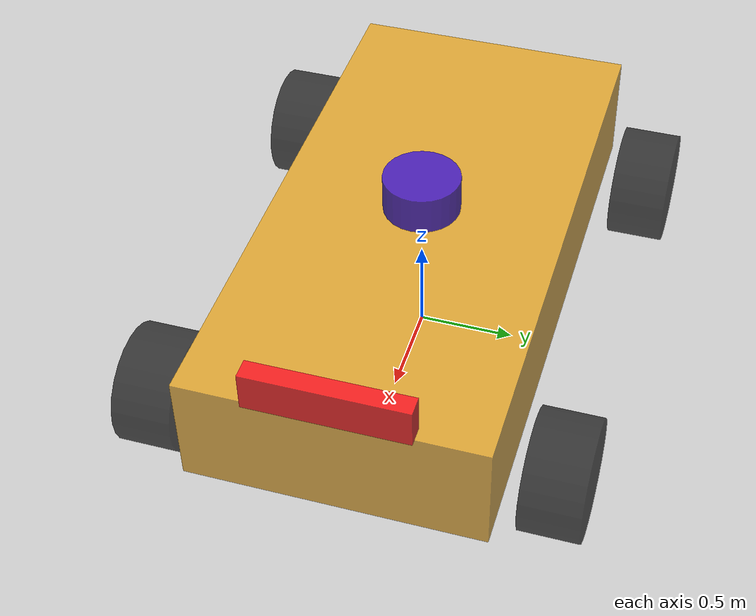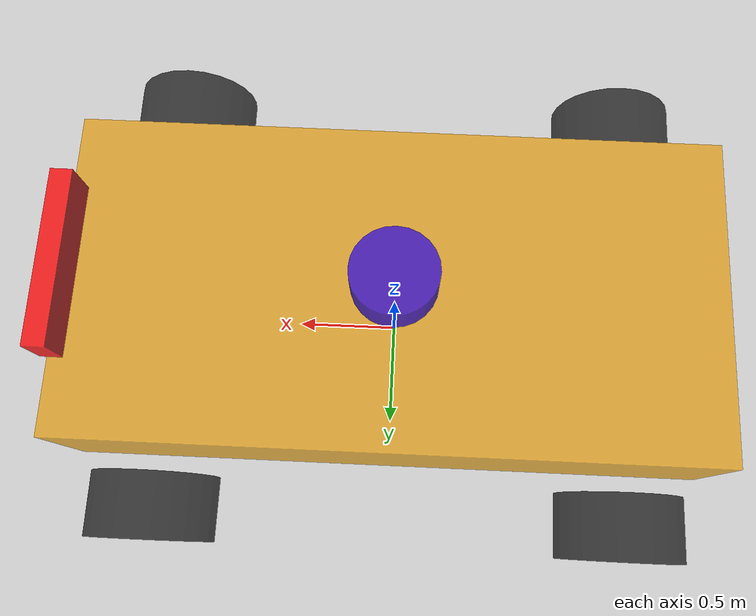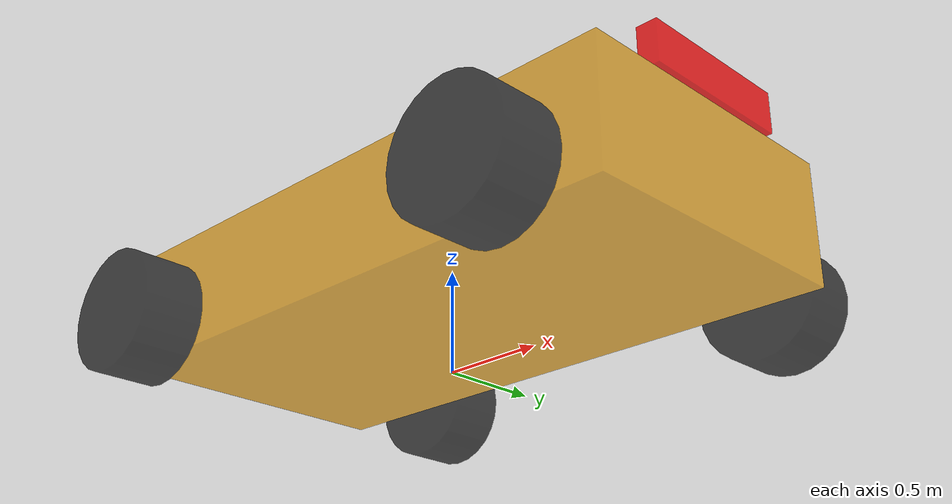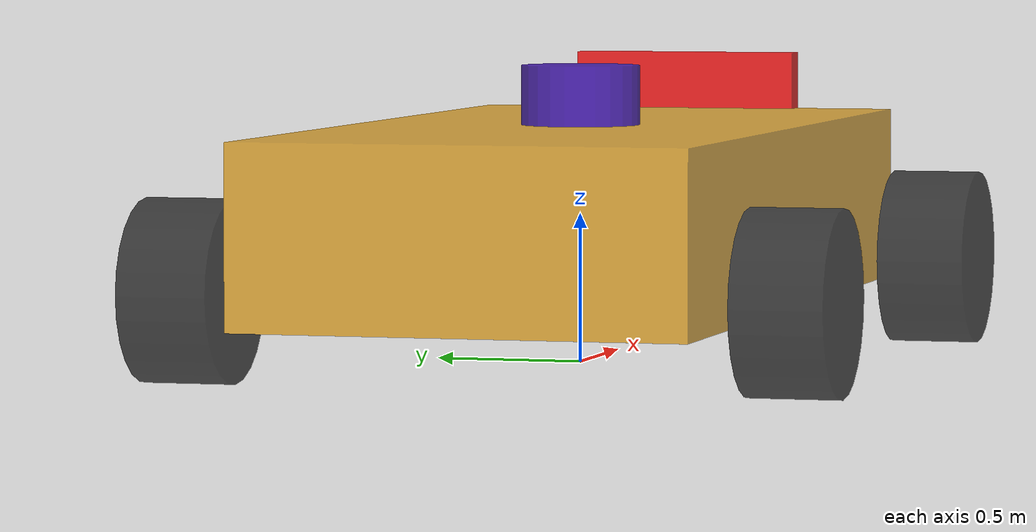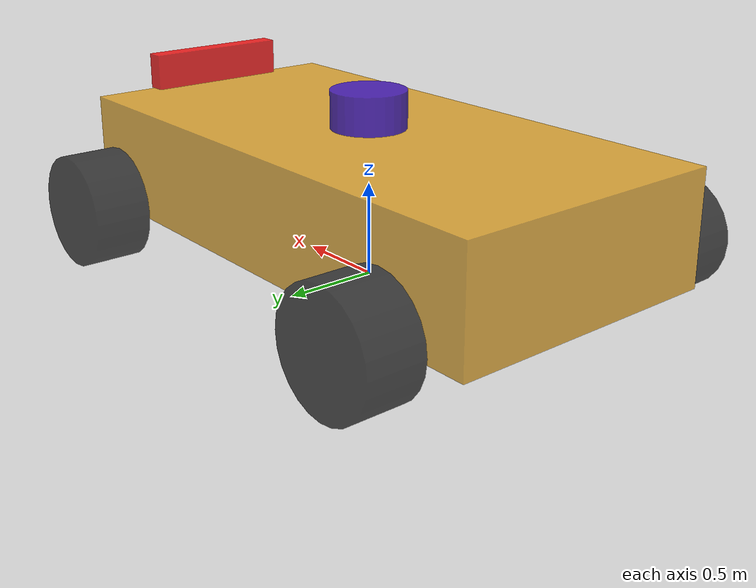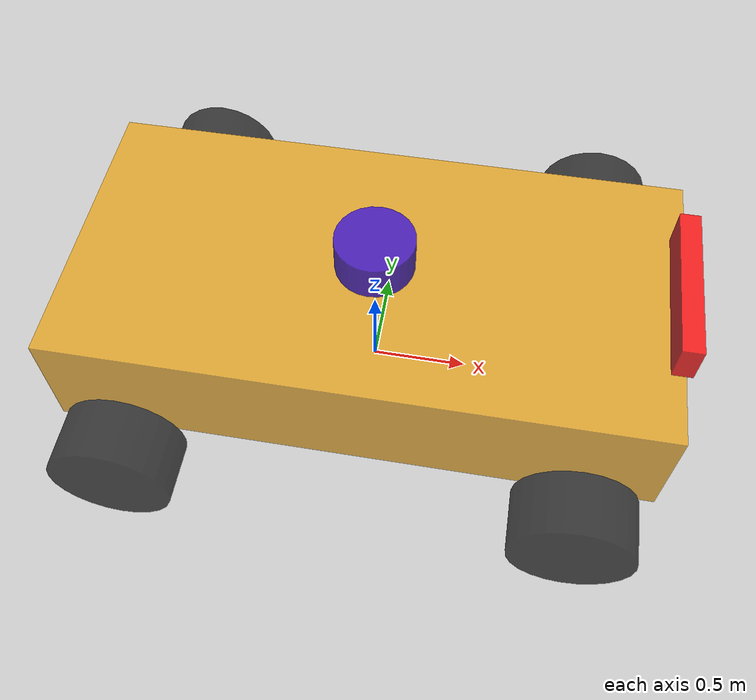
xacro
<!-- car -->
<robot xmlns:xacro="http://www.ros.org/wiki/xacro" name="main_car">
    <!-- PI -->
    <xacro:property name="PI" value="3.141592653"/>

    <!-- Include subfiles, must be after parameter definitions so that subfiles can use parameters from the parent file -->
    <xacro:include filename="car_base.xacro"/>
    <xacro:include filename="car_camera.xacro"/>
    <xacro:include filename="car_radar.xacro"/>
</robot>

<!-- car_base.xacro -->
<!-- Chassis -->
<robot xmlns:xacro="http://www.ros.org/wiki/xacro">
    <!-- Car dimensions -->
    <xacro:property name="car_length" value="3.0"/>
    <xacro:property name="car_width" value="1.5"/>
    <xacro:property name="car_height" value="0.6"/>

    <!-- Ground clearance -->
    <xacro:property name="ground_height" value="0.2"/>

    <!-- Include subfile, must be after parameter definitions so subfile can use parent file parameters -->
    <xacro:include filename="car_wheels.xacro"/>

    <!-- Color -->
    <material name="yellow">
        <color rgba="0.9 0.6 0.0 0.7"/>
    </material>

    <!-- Root coordinate -->
    <link name="map"/>

    <!-- Chassis projection point in map -->
    <link name="base_footprint"/>

    <!-- Chassis -->
    <link name="base_link">
        <visual>
            <geometry>
                <box size="${car_length} ${car_width} ${car_height}"/>
            </geometry>
            <material name="yellow"/>
        </visual>
    </link>

    <!-- Projection point linked to map -->
    <joint name="footprint_to_map" type="fixed">
        <parent link="map"/>
        <child link="base_footprint"/>
    </joint>

    <!-- Chassis linked to projection point -->
    <joint name="base_to_footprint" type="fixed">
        <parent link="base_footprint"/>
        <child link="base_link"/>
        <origin xyz="0.0 0.0 ${car_height / 2.0 + ground_height}"/>
    </joint>
</robot>

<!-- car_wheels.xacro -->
<!-- Wheels -->
<robot xmlns:xacro="http://www.ros.org/wiki/xacro">
    <!-- Wheel dimensions -->
    <xacro:property name="wheel_radius" value="${car_height / 2.0 + wheel_joint_z + ground_height}"/>
    <xacro:property name="wheel_width" value="0.3"/>

    <!-- Wheel offsets -->
    <xacro:property name="wheel_joint_x" value="${car_length / 2.0 - 0.4}"/>
    <xacro:property name="wheel_joint_y" value="${car_width / 2.0 + wheel_width/ 2.0 + 0.1}"/>
    <xacro:property name="wheel_joint_z" value="-0.2"/>

    <!-- Color -->
    <material name="black">
        <color rgba="0.0 0.0 0.0 0.7"/>
    </material>

    <!-- Wheel geometry -->
    <xacro:macro name="wheel_geometry" params="wheel_name">
        <link name="${wheel_name}">
            <visual>
                <geometry>
                    <cylinder radius="${wheel_radius}" length="${wheel_width}"/>
                </geometry>
                <origin rpy="${PI / 2.0} 0.0 0.0"/>
                <material name="black"/>
            </visual>
        </link>
    </xacro:macro>

    <!-- Rear wheel function -->
    <xacro:macro name="wheel_rear_func" params="wheel_name left_flag">
        <!-- Wheel geometry -->
        <xacro:wheel_geometry wheel_name="${wheel_name}"/>

        <!-- Wheel attached to base_link -->
        <joint name="${wheel_name}_rolling" type="continuous">
            <parent link="base_link"/>
            <child link="${wheel_name}"/>
            <origin xyz="${-wheel_joint_x} ${wheel_joint_y * left_flag} ${wheel_joint_z}"/>
            <axis xyz="0 1 0"/>
        </joint>
    </xacro:macro>

    <!-- Front wheel function -->
    <xacro:macro name="wheel_front_func" params="wheel_name left_flag">
        <!-- Wheel geometry -->
        <xacro:wheel_geometry wheel_name="${wheel_name}"/>

        <!-- Steering knuckle geometry -->
        <link name="${wheel_name}_steering_knuckle"/>

        <!-- Steering knuckle attached to base_link -->
        <joint name="${wheel_name}_turning" type="revolute">
            <parent link="base_link"/>
            <child link="${wheel_name}_steering_knuckle"/>
            <origin xyz="${wheel_joint_x} ${wheel_joint_y * left_flag} ${wheel_joint_z}"/>
            <axis xyz="0 0 1"/>
            <limit effort="0.0" velocity="0.0" lower="-${PI / 6.0}" upper="${PI / 6.0}" />
        </joint>

        <!-- Wheel attached to steering knuckle -->
        <joint name="${wheel_name}_rolling" type="continuous">
            <parent link="${wheel_name}_steering_knuckle"/>
            <child link="${wheel_name}"/>
            <origin xyz="0 0 0"/>
            <axis xyz="0 1 0"/>
        </joint>
    </xacro:macro>

    <!-- Generate 4 wheels -->
    <xacro:wheel_front_func wheel_name="left_front" left_flag="1"/>
    <xacro:wheel_front_func wheel_name="right_front" left_flag="-1"/>
    <xacro:wheel_rear_func wheel_name="left_rear" left_flag="1"/>
    <xacro:wheel_rear_func wheel_name="right_rear" left_flag="-1"/>
</robot>

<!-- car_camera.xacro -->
<!-- Camera -->
<robot xmlns:xacro="http://www.ros.org/wiki/xacro">
    <!-- Camera dimensions -->
    <xacro:property name="camera_length" value="0.1"/>
    <xacro:property name="camera_width" value="0.8"/>
    <xacro:property name="camera_height" value="0.2"/>

    <!-- Camera offset -->
    <xacro:property name="camera_joint_x" value="${car_length / 2.0 - 0.02}"/>
    <xacro:property name="camera_joint_y" value="0.0"/>
    <xacro:property name="camera_joint_z" value="${car_height / 2.0 + camera_height / 2.0}"/>

    <!-- Color -->
    <material name="red">
        <color rgba="1.0 0.0 0.0 0.8"/>
    </material>

    <!-- Camera geometry -->
    <link name="camera">
        <visual>
            <geometry>
                <box size="${camera_length} ${camera_width} ${camera_height}"/>
            </geometry>
            <material name="red"/>
        </visual>
    </link>

    <!-- Camera attached to base_link -->
    <joint name="camera2base_link" type="fixed">
        <parent link="base_link"/>
        <child link="camera"/>
        <origin xyz="${camera_joint_x} ${camera_joint_y} ${camera_joint_z}"/>
    </joint>
</robot>

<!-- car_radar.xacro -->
<!-- Radar -->
<robot xmlns:xacro="http://www.ros.org/wiki/xacro">
    <!-- Radar dimensions -->
    <xacro:property name="radar_radius" value="0.2"/>
    <xacro:property name="radar_height" value="0.2"/>

    <!-- Radar offset -->
    <xacro:property name="radar_joint_x" value="0.0"/>
    <xacro:property name="radar_joint_y" value="0.0"/>
    <xacro:property name="radar_joint_z" value="${car_height / 2.0 + radar_height / 2.0}"/>

    <!-- Color -->
    <material name="blue">
        <color rgba="0.2 0.0 0.7 0.8"/>
    </material>

    <!-- Radar geometry -->
    <link name="radar">
        <visual>
            <geometry>
                <cylinder radius="${radar_radius}" length="${radar_height}"/>
            </geometry>
            <material name="blue"/>
        </visual>
    </link>

    <!-- Radar attached to base_link -->
    <joint name="radar2base_link" type="fixed">
        <parent link="base_link"/>
        <child link="radar"/>
        <origin xyz="${radar_joint_x} ${radar_joint_y} ${radar_joint_z}"/>
    </joint>
</robot>
